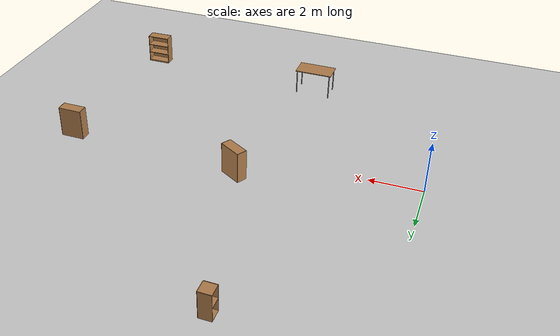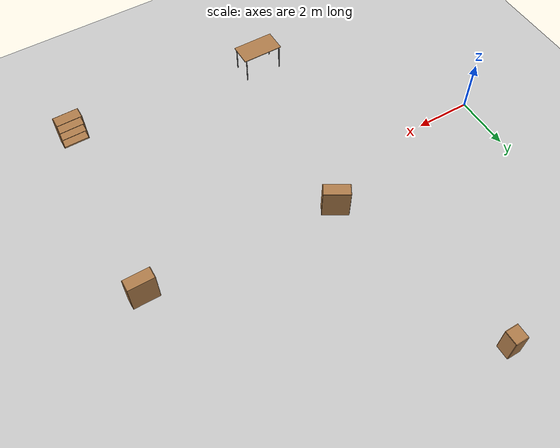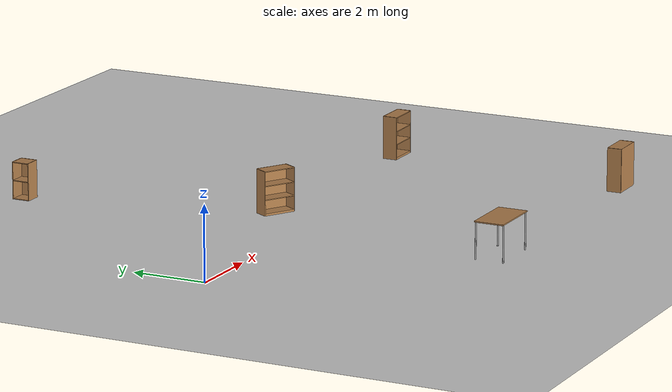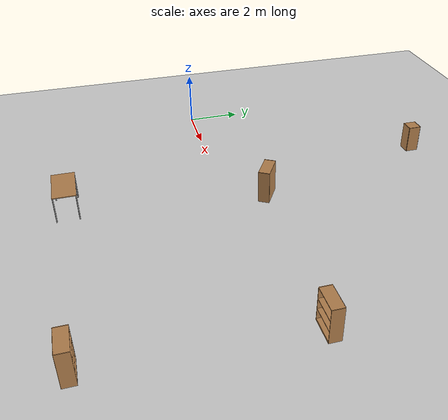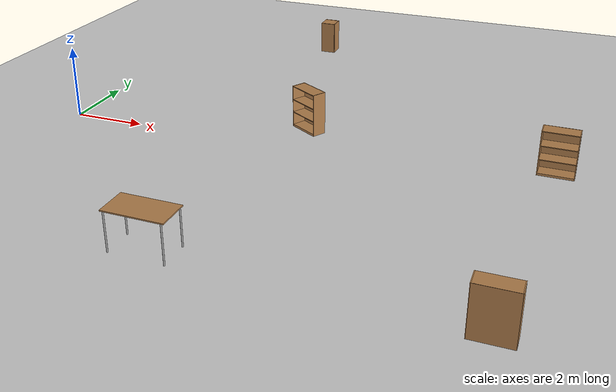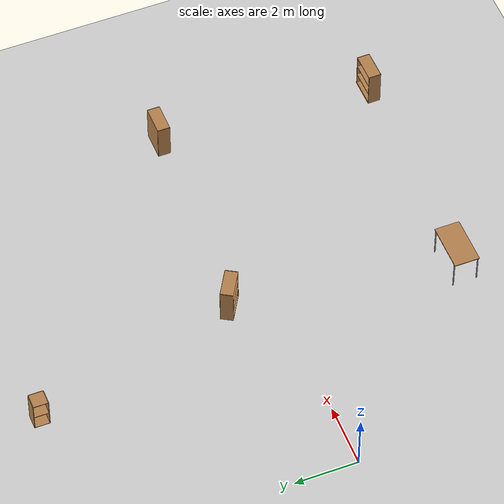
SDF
<sdf version="1.6">
 <world name="default">
  <model name="ground_plane">
   <static>1</static>
   <link name="link">
    <collision name="collision">
     <geometry><plane><normal>0 0 1</normal><size>100 100</size></plane></geometry>
     <surface><friction><ode><mu>100</mu><mu2>50</mu2></ode></friction></surface>
    </collision>
    <visual name="visual">
     <cast_shadows>0</cast_shadows>
     <geometry><plane><normal>0 0 1</normal><size>100 100</size></plane></geometry>
     <material>
      <script><uri>file://media/materials/scripts/gazebo.material</uri><name>Gazebo/Grey</name></script>
     </material>
    </visual>
   </link>
  </model>
  <model name="cabinet">
   <static>1</static>
   <link name="cabinet_bottom_plate">
    <inertial>
     <pose>0 0 -1 0 -0 0</pose>
     <inertia><ixx>2.05</ixx><ixy>0</ixy><ixz>0</ixz><iyy>2.05</iyy><iyz>0</iyz><izz>2.05</izz></inertia>
     <mass>25</mass>
    </inertial>
    <collision name="cabinet_bottom_plate_geom">
     <pose>0 0 0.01 0 -0 0</pose>
     <geometry><box><size>0.45 0.45 0.02</size></box></geometry>
    </collision>
    <visual name="cabinet_bottom_plate_geom_visual">
     <pose>0 0 0.01 0 -0 0</pose>
     <geometry><box><size>0.45 0.45 0.02</size></box></geometry>
     <material>
      <script><uri>file://media/materials/scripts/gazebo.material</uri><name>Gazebo/Wood</name></script>
     </material>
    </visual>
    <collision name="cabinet_bottom_plate_geom_cabinet_back_plate">
     <pose>0.235 0 0.51 0 -0 0</pose>
     <geometry><box><size>0.02 0.45 1.02</size></box></geometry>
    </collision>
    <visual name="cabinet_bottom_plate_geom_cabinet_back_plate_visual">
     <pose>0.235 0 0.51 0 -0 0</pose>
     <geometry><box><size>0.02 0.45 1.02</size></box></geometry>
     <material>
      <script><uri>file://media/materials/scripts/gazebo.material</uri><name>Gazebo/Wood</name></script>
     </material>
    </visual>
    <collision name="cabinet_bottom_plate_geom_cabinet_left_plate">
     <pose>0 0.235 0.51 0 -0 0</pose>
     <geometry><box><size>0.45 0.02 1.02</size></box></geometry>
    </collision>
    <visual name="cabinet_bottom_plate_geom_cabinet_left_plate_visual">
     <pose>0 0.235 0.51 0 -0 0</pose>
     <geometry><box><size>0.45 0.02 1.02</size></box></geometry>
     <material>
      <script><uri>file://media/materials/scripts/gazebo.material</uri><name>Gazebo/Wood</name></script>
     </material>
    </visual>
    <collision name="cabinet_bottom_plate_geom_cabinet_middle_plate">
     <pose>0 0 0.51 0 -0 0</pose>
     <geometry><box><size>0.45 0.45 0.02</size></box></geometry>
    </collision>
    <visual name="cabinet_bottom_plate_geom_cabinet_middle_plate_visual">
     <pose>0 0 0.51 0 -0 0</pose>
     <geometry><box><size>0.45 0.45 0.02</size></box></geometry>
     <material>
      <script><uri>file://media/materials/scripts/gazebo.material</uri><name>Gazebo/Wood</name></script>
     </material>
    </visual>
    <collision name="cabinet_bottom_plate_geom_cabinet_right_plate">
     <pose>0 -0.235 0.51 0 -0 0</pose>
     <geometry><box><size>0.45 0.02 1.02</size></box></geometry>
    </collision>
    <visual name="cabinet_bottom_plate_geom_cabinet_right_plate_visual">
     <pose>0 -0.235 0.51 0 -0 0</pose>
     <geometry><box><size>0.45 0.02 1.02</size></box></geometry>
     <material>
      <script><uri>file://media/materials/scripts/gazebo.material</uri><name>Gazebo/Wood</name></script>
     </material>
    </visual>
    <collision name="cabinet_bottom_plate_geom_cabinet_top_plate">
     <pose>0 0 1.01 0 -0 0</pose>
     <geometry><box><size>0.45 0.45 0.02</size></box></geometry>
    </collision>
    <visual name="cabinet_bottom_plate_geom_cabinet_top_plate_visual">
     <pose>0 0 1.01 0 -0 0</pose>
     <geometry><box><size>0.45 0.45 0.02</size></box></geometry>
     <material>
      <script><uri>file://media/materials/scripts/gazebo.material</uri><name>Gazebo/Wood</name></script>
     </material>
    </visual>
   </link>
   <pose>4.8093 7.99658 0 0 -0 0</pose>
  </model>
  <model name="bookshelf_0">
   <static>1</static>
   <link name="link">
    <inertial><mass>1</mass></inertial>
    <collision name="back">
     <pose>0 0.005 0.6 0 -0 0</pose>
     <geometry><box><size>0.9 0.01 1.2</size></box></geometry>
    </collision>
    <visual name="visual1">
     <pose>0 0.005 0.6 0 -0 0</pose>
     <geometry><box><size>0.9 0.01 1.2</size></box></geometry>
     <material>
      <script><uri>file://media/materials/scripts/gazebo.material</uri><name>Gazebo/Wood</name></script>
     </material>
    </visual>
    <collision name="left_side">
     <pose>0.45 -0.195 0.6 0 -0 0</pose>
     <geometry><box><size>0.02 0.4 1.2</size></box></geometry>
    </collision>
    <visual name="visual2">
     <pose>0.45 -0.195 0.6 0 -0 0</pose>
     <geometry><box><size>0.02 0.4 1.2</size></box></geometry>
     <material>
      <script><uri>file://media/materials/scripts/gazebo.material</uri><name>Gazebo/Wood</name></script>
     </material>
    </visual>
    <collision name="right_side">
     <pose>-0.45 -0.195 0.6 0 -0 0</pose>
     <geometry><box><size>0.02 0.4 1.2</size></box></geometry>
    </collision>
    <visual name="visual3">
     <pose>-0.45 -0.195 0.6 0 -0 0</pose>
     <geometry><box><size>0.02 0.4 1.2</size></box></geometry>
     <material>
      <script><uri>file://media/materials/scripts/gazebo.material</uri><name>Gazebo/Wood</name></script>
     </material>
    </visual>
    <collision name="bottom">
     <pose>0 -0.195 0.03 0 -0 0</pose>
     <geometry><box><size>0.88 0.4 0.06</size></box></geometry>
    </collision>
    <visual name="visual4">
     <pose>0 -0.195 0.03 0 -0 0</pose>
     <geometry><box><size>0.88 0.4 0.06</size></box></geometry>
     <material>
      <script><uri>file://media/materials/scripts/gazebo.material</uri><name>Gazebo/Wood</name></script>
     </material>
    </visual>
    <collision name="top">
     <pose>0 -0.195 1.19 0 -0 0</pose>
     <geometry><box><size>0.88 0.4 0.02</size></box></geometry>
    </collision>
    <visual name="visual5">
     <pose>0 -0.195 1.19 0 -0 0</pose>
     <geometry><box><size>0.88 0.4 0.02</size></box></geometry>
     <material>
      <script><uri>file://media/materials/scripts/gazebo.material</uri><name>Gazebo/Wood</name></script>
     </material>
    </visual>
    <collision name="low_shelf">
     <pose>0 -0.195 0.43 0 -0 0</pose>
     <geometry><box><size>0.88 0.4 0.02</size></box></geometry>
    </collision>
    <visual name="visual6">
     <pose>0 -0.195 0.43 0 -0 0</pose>
     <geometry><box><size>0.88 0.4 0.02</size></box></geometry>
     <material>
      <script><uri>file://media/materials/scripts/gazebo.material</uri><name>Gazebo/Wood</name></script>
     </material>
    </visual>
    <collision name="high_shelf">
     <pose>0 -0.195 0.8 0 -0 0</pose>
     <geometry><box><size>0.88 0.4 0.02</size></box></geometry>
    </collision>
    <visual name="visual7">
     <pose>0 -0.195 0.8 0 -0 0</pose>
     <geometry><box><size>0.88 0.4 0.02</size></box></geometry>
     <material>
      <script><uri>file://media/materials/scripts/gazebo.material</uri><name>Gazebo/Wood</name></script>
     </material>
    </visual>
   </link>
   <pose>13.2358 1.29416 0 0 -0 0</pose>
  </model>
  <model name="bookshelf_1">
   <static>1</static>
   <link name="link">
    <inertial><mass>1</mass></inertial>
    <collision name="back">
     <pose>0 0.005 0.6 0 -0 0</pose>
     <geometry><box><size>0.9 0.01 1.2</size></box></geometry>
    </collision>
    <visual name="visual1">
     <pose>0 0.005 0.6 0 -0 0</pose>
     <geometry><box><size>0.9 0.01 1.2</size></box></geometry>
     <material>
      <script><uri>file://media/materials/scripts/gazebo.material</uri><name>Gazebo/Wood</name></script>
     </material>
    </visual>
    <collision name="left_side">
     <pose>0.45 -0.195 0.6 0 -0 0</pose>
     <geometry><box><size>0.02 0.4 1.2</size></box></geometry>
    </collision>
    <visual name="visual2">
     <pose>0.45 -0.195 0.6 0 -0 0</pose>
     <geometry><box><size>0.02 0.4 1.2</size></box></geometry>
     <material>
      <script><uri>file://media/materials/scripts/gazebo.material</uri><name>Gazebo/Wood</name></script>
     </material>
    </visual>
    <collision name="right_side">
     <pose>-0.45 -0.195 0.6 0 -0 0</pose>
     <geometry><box><size>0.02 0.4 1.2</size></box></geometry>
    </collision>
    <visual name="visual3">
     <pose>-0.45 -0.195 0.6 0 -0 0</pose>
     <geometry><box><size>0.02 0.4 1.2</size></box></geometry>
     <material>
      <script><uri>file://media/materials/scripts/gazebo.material</uri><name>Gazebo/Wood</name></script>
     </material>
    </visual>
    <collision name="bottom">
     <pose>0 -0.195 0.03 0 -0 0</pose>
     <geometry><box><size>0.88 0.4 0.06</size></box></geometry>
    </collision>
    <visual name="visual4">
     <pose>0 -0.195 0.03 0 -0 0</pose>
     <geometry><box><size>0.88 0.4 0.06</size></box></geometry>
     <material>
      <script><uri>file://media/materials/scripts/gazebo.material</uri><name>Gazebo/Wood</name></script>
     </material>
    </visual>
    <collision name="top">
     <pose>0 -0.195 1.19 0 -0 0</pose>
     <geometry><box><size>0.88 0.4 0.02</size></box></geometry>
    </collision>
    <visual name="visual5">
     <pose>0 -0.195 1.19 0 -0 0</pose>
     <geometry><box><size>0.88 0.4 0.02</size></box></geometry>
     <material>
      <script><uri>file://media/materials/scripts/gazebo.material</uri><name>Gazebo/Wood</name></script>
     </material>
    </visual>
    <collision name="low_shelf">
     <pose>0 -0.195 0.43 0 -0 0</pose>
     <geometry><box><size>0.88 0.4 0.02</size></box></geometry>
    </collision>
    <visual name="visual6">
     <pose>0 -0.195 0.43 0 -0 0</pose>
     <geometry><box><size>0.88 0.4 0.02</size></box></geometry>
     <material>
      <script><uri>file://media/materials/scripts/gazebo.material</uri><name>Gazebo/Wood</name></script>
     </material>
    </visual>
    <collision name="high_shelf">
     <pose>0 -0.195 0.8 0 -0 0</pose>
     <geometry><box><size>0.88 0.4 0.02</size></box></geometry>
    </collision>
    <visual name="visual7">
     <pose>0 -0.195 0.8 0 -0 0</pose>
     <geometry><box><size>0.88 0.4 0.02</size></box></geometry>
     <material>
      <script><uri>file://media/materials/scripts/gazebo.material</uri><name>Gazebo/Wood</name></script>
     </material>
    </visual>
   </link>
   <pose>12.8122 -5.92357 0 0 0 -3.13184</pose>
  </model>
  <model name="bookshelf_2">
   <static>1</static>
   <link name="link">
    <inertial><mass>1</mass></inertial>
    <collision name="back">
     <pose>0 0.005 0.6 0 -0 0</pose>
     <geometry><box><size>0.9 0.01 1.2</size></box></geometry>
    </collision>
    <visual name="visual1">
     <pose>0 0.005 0.6 0 -0 0</pose>
     <geometry><box><size>0.9 0.01 1.2</size></box></geometry>
     <material>
      <script><uri>file://media/materials/scripts/gazebo.material</uri><name>Gazebo/Wood</name></script>
     </material>
    </visual>
    <collision name="left_side">
     <pose>0.45 -0.195 0.6 0 -0 0</pose>
     <geometry><box><size>0.02 0.4 1.2</size></box></geometry>
    </collision>
    <visual name="visual2">
     <pose>0.45 -0.195 0.6 0 -0 0</pose>
     <geometry><box><size>0.02 0.4 1.2</size></box></geometry>
     <material>
      <script><uri>file://media/materials/scripts/gazebo.material</uri><name>Gazebo/Wood</name></script>
     </material>
    </visual>
    <collision name="right_side">
     <pose>-0.45 -0.195 0.6 0 -0 0</pose>
     <geometry><box><size>0.02 0.4 1.2</size></box></geometry>
    </collision>
    <visual name="visual3">
     <pose>-0.45 -0.195 0.6 0 -0 0</pose>
     <geometry><box><size>0.02 0.4 1.2</size></box></geometry>
     <material>
      <script><uri>file://media/materials/scripts/gazebo.material</uri><name>Gazebo/Wood</name></script>
     </material>
    </visual>
    <collision name="bottom">
     <pose>0 -0.195 0.03 0 -0 0</pose>
     <geometry><box><size>0.88 0.4 0.06</size></box></geometry>
    </collision>
    <visual name="visual4">
     <pose>0 -0.195 0.03 0 -0 0</pose>
     <geometry><box><size>0.88 0.4 0.06</size></box></geometry>
     <material>
      <script><uri>file://media/materials/scripts/gazebo.material</uri><name>Gazebo/Wood</name></script>
     </material>
    </visual>
    <collision name="top">
     <pose>0 -0.195 1.19 0 -0 0</pose>
     <geometry><box><size>0.88 0.4 0.02</size></box></geometry>
    </collision>
    <visual name="visual5">
     <pose>0 -0.195 1.19 0 -0 0</pose>
     <geometry><box><size>0.88 0.4 0.02</size></box></geometry>
     <material>
      <script><uri>file://media/materials/scripts/gazebo.material</uri><name>Gazebo/Wood</name></script>
     </material>
    </visual>
    <collision name="low_shelf">
     <pose>0 -0.195 0.43 0 -0 0</pose>
     <geometry><box><size>0.88 0.4 0.02</size></box></geometry>
    </collision>
    <visual name="visual6">
     <pose>0 -0.195 0.43 0 -0 0</pose>
     <geometry><box><size>0.88 0.4 0.02</size></box></geometry>
     <material>
      <script><uri>file://media/materials/scripts/gazebo.material</uri><name>Gazebo/Wood</name></script>
     </material>
    </visual>
    <collision name="high_shelf">
     <pose>0 -0.195 0.8 0 -0 0</pose>
     <geometry><box><size>0.88 0.4 0.02</size></box></geometry>
    </collision>
    <visual name="visual7">
     <pose>0 -0.195 0.8 0 -0 0</pose>
     <geometry><box><size>0.88 0.4 0.02</size></box></geometry>
     <material>
      <script><uri>file://media/materials/scripts/gazebo.material</uri><name>Gazebo/Wood</name></script>
     </material>
    </visual>
   </link>
   <pose>6.64763 1.58171 0 0 0 -0.53824</pose>
  </model>
  <model name="table">
   <static>1</static>
   <link name="link">
    <collision name="surface">
     <pose>0 0 1 0 -0 0</pose>
     <geometry><box><size>1.5 0.8 0.03</size></box></geometry>
     <surface><friction><ode><mu>0.6</mu><mu2>0.6</mu2></ode></friction></surface>
    </collision>
    <visual name="visual1">
     <pose>0 0 1 0 -0 0</pose>
     <geometry><box><size>1.5 0.8 0.03</size></box></geometry>
     <material>
      <script><uri>file://media/materials/scripts/gazebo.material</uri><name>Gazebo/Wood</name></script>
     </material>
    </visual>
    <collision name="front_left_leg">
     <pose>0.68 0.38 0.5 0 -0 0</pose>
     <geometry><cylinder><radius>0.02</radius><length>1</length></cylinder></geometry>
    </collision>
    <visual name="front_left_leg">
     <pose>0.68 0.38 0.5 0 -0 0</pose>
     <geometry><cylinder><radius>0.02</radius><length>1</length></cylinder></geometry>
     <material>
      <script><uri>file://media/materials/scripts/gazebo.material</uri><name>Gazebo/Grey</name></script>
     </material>
    </visual>
    <collision name="front_right_leg">
     <pose>0.68 -0.38 0.5 0 -0 0</pose>
     <geometry><cylinder><radius>0.02</radius><length>1</length></cylinder></geometry>
    </collision>
    <visual name="front_right_leg">
     <pose>0.68 -0.38 0.5 0 -0 0</pose>
     <geometry><cylinder><radius>0.02</radius><length>1</length></cylinder></geometry>
     <material>
      <script><uri>file://media/materials/scripts/gazebo.material</uri><name>Gazebo/Grey</name></script>
     </material>
    </visual>
    <collision name="back_right_leg">
     <pose>-0.68 -0.38 0.5 0 -0 0</pose>
     <geometry><cylinder><radius>0.02</radius><length>1</length></cylinder></geometry>
    </collision>
    <visual name="back_right_leg">
     <pose>-0.68 -0.38 0.5 0 -0 0</pose>
     <geometry><cylinder><radius>0.02</radius><length>1</length></cylinder></geometry>
     <material>
      <script><uri>file://media/materials/scripts/gazebo.material</uri><name>Gazebo/Grey</name></script>
     </material>
    </visual>
    <collision name="back_left_leg">
     <pose>-0.68 0.38 0.5 0 -0 0</pose>
     <geometry><cylinder><radius>0.02</radius><length>1</length></cylinder></geometry>
    </collision>
    <visual name="back_left_leg">
     <pose>-0.68 0.38 0.5 0 -0 0</pose>
     <geometry><cylinder><radius>0.02</radius><length>1</length></cylinder></geometry>
     <material>
      <script><uri>file://media/materials/scripts/gazebo.material</uri><name>Gazebo/Grey</name></script>
     </material>
    </visual>
   </link>
   <pose>5.52874 -5.48348 0 0 -0 0</pose>
  </model>
 </world>
</sdf>
